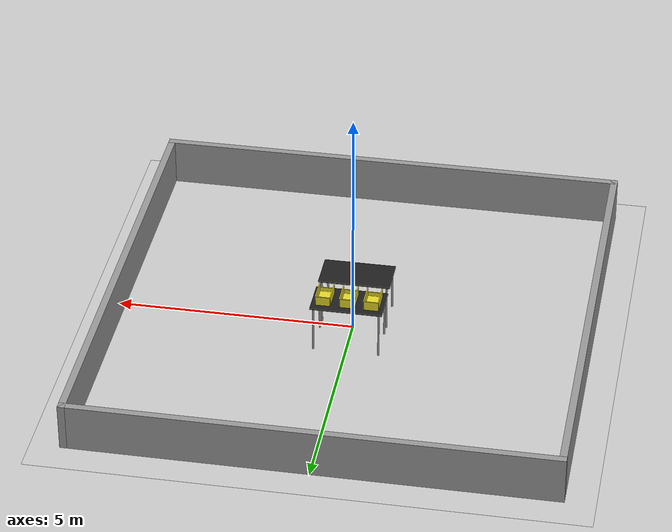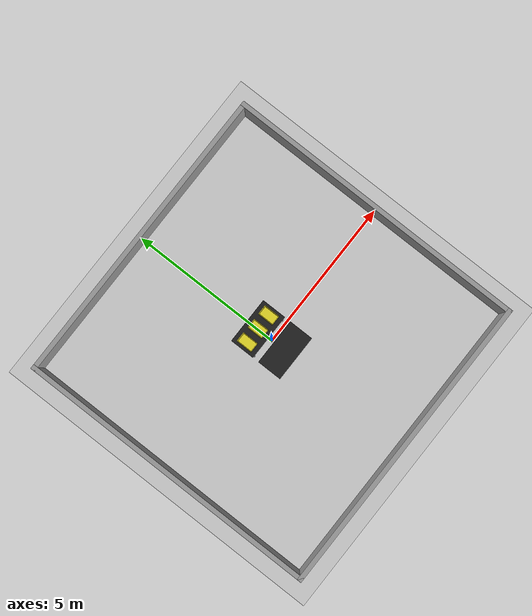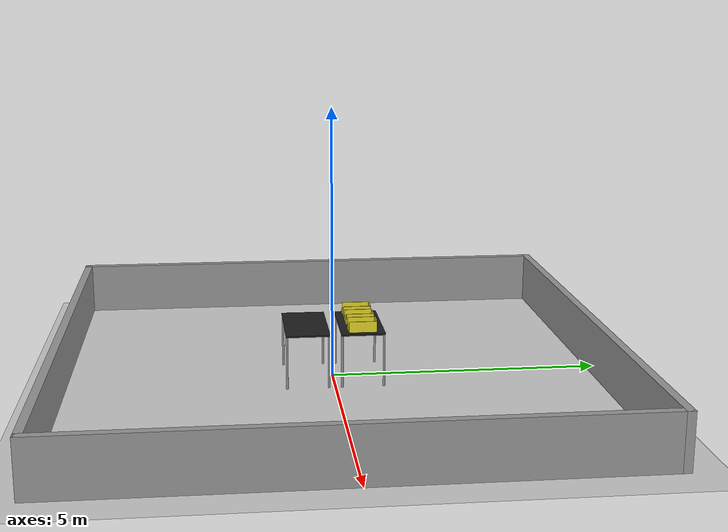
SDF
<sdf version="1.7">
 <world name="default">
  <light name="sun" type="directional">
   <pose>0 0 10 0 -0 0</pose>
   <diffuse>0.8 0.8 0.8 1</diffuse>
   <specular>0.2 0.2 0.2 1</specular>
   <attenuation>
    <range>1000</range>
    <constant>0.9</constant>
    <linear>0.01</linear>
    <quadratic>0.001</quadratic>
   </attenuation>
   <direction>-0.5 0.1 -0.9</direction>
   <spot><inner_angle>0</inner_angle><outer_angle>0</outer_angle><falloff>0</falloff></spot>
  </light>
  <model name="ground_plane">
   <static>1</static>
   <link name="link">
    <collision name="collision">
     <geometry><plane><normal>0 0 1</normal><size>100 100</size></plane></geometry>
     <surface><friction><ode><mu>100</mu><mu2>50</mu2></ode></friction></surface>
    </collision>
    <visual name="visual">
     <cast_shadows>0</cast_shadows>
     <geometry><plane><normal>0 0 1</normal><size>100 100</size></plane></geometry>
     <material>
      <script><uri>file://media/materials/scripts/gazebo.material</uri><name>Gazebo/Grey</name></script>
     </material>
    </visual>
   </link>
  </model>
  <gravity>0 0 -9.8</gravity>
  <magnetic_field>6e-06 2.3e-05 -4.2e-05</magnetic_field>
  <atmosphere type="adiabatic"/>
  <physics type="ode">
   <max_step_size>0.001</max_step_size>
   <real_time_factor>1</real_time_factor>
   <real_time_update_rate>1000</real_time_update_rate>
  </physics>
  <scene><ambient>0.4 0.4 0.4 1</ambient><background>0.7 0.7 0.7 1</background><shadows>1</shadows></scene>
  <audio><device>default</device></audio>
  <spherical_coordinates>
   <surface_model>EARTH_WGS84</surface_model>
   <latitude_deg>0</latitude_deg>
   <longitude_deg>0</longitude_deg>
   <elevation>0</elevation>
   <heading_deg>0</heading_deg>
  </spherical_coordinates>
  <model name="EmptyRoom">
   <pose>0.00816 -0.008034 0 0 -0 0</pose>
   <link name="Wall_1">
    <collision name="Wall_1_Collision">
     <geometry><box><size>10 0.15 1</size></box></geometry>
     <pose>0 0 0.5 0 -0 0</pose>
    </collision>
    <visual name="Wall_1_Visual">
     <pose>0 0 0.5 0 -0 0</pose>
     <geometry><box><size>10 0.15 1</size></box></geometry>
     <material>
      <script><uri>file://media/materials/scripts/gazebo.material</uri><name>Gazebo/Grey</name></script>
      <ambient>1 1 1 1</ambient>
     </material>
     <meta><layer>0</layer></meta>
    </visual>
    <pose>-4.925 0 0 0 -0 -1.5708</pose>
   </link>
   <link name="Wall_2">
    <collision name="Wall_2_Collision">
     <geometry><box><size>10 0.15 1</size></box></geometry>
     <pose>0 0 0.5 0 -0 0</pose>
    </collision>
    <visual name="Wall_2_Visual">
     <pose>0 0 0.5 0 -0 0</pose>
     <geometry><box><size>10 0.15 1</size></box></geometry>
     <material>
      <script><uri>file://media/materials/scripts/gazebo.material</uri><name>Gazebo/Grey</name></script>
      <ambient>1 1 1 1</ambient>
     </material>
     <meta><layer>0</layer></meta>
    </visual>
    <pose>-0 -4.925 0 0 -0 0</pose>
   </link>
   <link name="Wall_3">
    <collision name="Wall_3_Collision">
     <geometry><box><size>10 0.15 1</size></box></geometry>
     <pose>0 0 0.5 0 -0 0</pose>
    </collision>
    <visual name="Wall_3_Visual">
     <pose>0 0 0.5 0 -0 0</pose>
     <geometry><box><size>10 0.15 1</size></box></geometry>
     <material>
      <script><uri>file://media/materials/scripts/gazebo.material</uri><name>Gazebo/Grey</name></script>
      <ambient>1 1 1 1</ambient>
     </material>
     <meta><layer>0</layer></meta>
    </visual>
    <pose>4.925 0 0 0 -0 1.5708</pose>
   </link>
   <link name="Wall_4">
    <collision name="Wall_4_Collision">
     <geometry><box><size>10 0.15 1</size></box></geometry>
     <pose>0 0 0.5 0 -0 0</pose>
    </collision>
    <visual name="Wall_4_Visual">
     <pose>0 0 0.5 0 -0 0</pose>
     <geometry><box><size>10 0.15 1</size></box></geometry>
     <material>
      <script><uri>file://media/materials/scripts/gazebo.material</uri><name>Gazebo/Grey</name></script>
      <ambient>1 1 1 1</ambient>
     </material>
     <meta><layer>0</layer></meta>
    </visual>
    <pose>-0 4.925 0 0 -0 3.14159</pose>
   </link>
   <static>1</static>
  </model>
  <model name="arm_mount">
   <link name="link">
    <inertial>
     <mass>0.618007</mass>
     <inertia>
      <ixx>0.0209316</ixx>
      <ixy>0</ixy>
      <ixz>0</ixz>
      <iyy>0.0209316</iyy>
      <iyz>0</iyz>
      <izz>0.00039788</izz>
     </inertia>
    </inertial>
    <pose>-0.000294 -0.001518 0 0 -0 0</pose>
    <visual name="visual">
     <geometry><cylinder><radius>0.035884</radius><length>1</length></cylinder></geometry>
     <material>
      <script><name>Gazebo/Grey</name><uri>file://media/materials/scripts/gazebo.material</uri></script>
      <shader type="pixel"><normal_map>__default__</normal_map></shader>
      <ambient>0.3 0.3 0.3 1</ambient>
      <diffuse>0.7 0.7 0.7 1</diffuse>
      <specular>0.01 0.01 0.01 1</specular>
      <emissive>0 0 0 1</emissive>
     </material>
    </visual>
    <collision name="collision">
     <geometry><cylinder><radius>0.035884</radius><length>1</length></cylinder></geometry>
     <surface>
      <friction>
       <ode><mu>1</mu><mu2>1</mu2><fdir1>0 0 0</fdir1><slip1>0</slip1><slip2>0</slip2></ode>
       <torsional>
        <coefficient>1</coefficient>
        <patch_radius>0</patch_radius>
        <surface_radius>0</surface_radius>
        <use_patch_radius>1</use_patch_radius>
        <ode><slip>0</slip></ode>
       </torsional>
      </friction>
      <bounce><restitution_coefficient>0</restitution_coefficient><threshold>1e+06</threshold></bounce>
      <contact>
       <collide_without_contact>0</collide_without_contact>
       <collide_without_contact_bitmask>1</collide_without_contact_bitmask>
       <collide_bitmask>1</collide_bitmask>
       <ode>
        <soft_cfm>0</soft_cfm>
        <soft_erp>0.2</soft_erp>
        <kp>1e+13</kp>
        <kd>1</kd>
        <max_vel>0.01</max_vel>
        <min_depth>0</min_depth>
       </ode>
       <bullet>
        <split_impulse>1</split_impulse>
        <split_impulse_penetration_threshold>-0.01</split_impulse_penetration_threshold>
        <soft_cfm>0</soft_cfm>
        <soft_erp>0.2</soft_erp>
        <kp>1e+13</kp>
        <kd>1</kd>
       </bullet>
      </contact>
     </surface>
    </collision>
   </link>
   <static>1</static>
   <pose>0 0 0.5 0 -0 0</pose>
  </model>
  <model name="table">
   <static>1</static>
   <link name="link">
    <collision name="surface">
     <pose>0 0 1 0 -0 0</pose>
     <geometry><box><size>1.5 0.8 0.03</size></box></geometry>
     <surface><friction><ode><mu>0.6</mu><mu2>0.6</mu2></ode></friction></surface>
    </collision>
    <visual name="visual1">
     <pose>0 0 1 0 -0 0</pose>
     <geometry><box><size>1.5 0.8 0.03</size></box></geometry>
     <material>
      <script><uri>file://media/materials/scripts/gazebo.material</uri><name>Gazebo/Black</name></script>
     </material>
    </visual>
    <collision name="front_left_leg">
     <pose>0.68 0.38 0.5 0 -0 0</pose>
     <geometry><cylinder><radius>0.02</radius><length>1</length></cylinder></geometry>
    </collision>
    <visual name="front_left_leg">
     <pose>0.68 0.38 0.5 0 -0 0</pose>
     <geometry><cylinder><radius>0.02</radius><length>1</length></cylinder></geometry>
     <material>
      <script><uri>file://media/materials/scripts/gazebo.material</uri><name>Gazebo/Grey</name></script>
     </material>
    </visual>
    <collision name="front_right_leg">
     <pose>0.68 -0.38 0.5 0 -0 0</pose>
     <geometry><cylinder><radius>0.02</radius><length>1</length></cylinder></geometry>
    </collision>
    <visual name="front_right_leg">
     <pose>0.68 -0.38 0.5 0 -0 0</pose>
     <geometry><cylinder><radius>0.02</radius><length>1</length></cylinder></geometry>
     <material>
      <script><uri>file://media/materials/scripts/gazebo.material</uri><name>Gazebo/Grey</name></script>
     </material>
    </visual>
    <collision name="back_right_leg">
     <pose>-0.68 -0.38 0.5 0 -0 0</pose>
     <geometry><cylinder><radius>0.02</radius><length>1</length></cylinder></geometry>
    </collision>
    <visual name="back_right_leg">
     <pose>-0.68 -0.38 0.5 0 -0 0</pose>
     <geometry><cylinder><radius>0.02</radius><length>1</length></cylinder></geometry>
     <material>
      <script><uri>file://media/materials/scripts/gazebo.material</uri><name>Gazebo/Grey</name></script>
     </material>
    </visual>
    <collision name="back_left_leg">
     <pose>-0.68 0.38 0.5 0 -0 0</pose>
     <geometry><cylinder><radius>0.02</radius><length>1</length></cylinder></geometry>
    </collision>
    <visual name="back_left_leg">
     <pose>-0.68 0.38 0.5 0 -0 0</pose>
     <geometry><cylinder><radius>0.02</radius><length>1</length></cylinder></geometry>
     <material>
      <script><uri>file://media/materials/scripts/gazebo.material</uri><name>Gazebo/Grey</name></script>
     </material>
    </visual>
   </link>
   <pose>0 0.5 0 0 -0 0</pose>
  </model>
  <model name="table_0">
   <static>1</static>
   <link name="link">
    <collision name="surface">
     <pose>0 0 1 0 -0 0</pose>
     <geometry><box><size>1.5 0.8 0.03</size></box></geometry>
     <surface><friction><ode><mu>0.6</mu><mu2>0.6</mu2></ode></friction></surface>
    </collision>
    <visual name="visual1">
     <pose>0 0 1 0 -0 0</pose>
     <geometry><box><size>1.5 0.8 0.03</size></box></geometry>
     <material>
      <script><uri>file://media/materials/scripts/gazebo.material</uri><name>Gazebo/Black</name></script>
     </material>
    </visual>
    <collision name="front_left_leg">
     <pose>0.68 0.38 0.5 0 -0 0</pose>
     <geometry><cylinder><radius>0.02</radius><length>1</length></cylinder></geometry>
    </collision>
    <visual name="front_left_leg">
     <pose>0.68 0.38 0.5 0 -0 0</pose>
     <geometry><cylinder><radius>0.02</radius><length>1</length></cylinder></geometry>
     <material>
      <script><uri>file://media/materials/scripts/gazebo.material</uri><name>Gazebo/Grey</name></script>
     </material>
    </visual>
    <collision name="front_right_leg">
     <pose>0.68 -0.38 0.5 0 -0 0</pose>
     <geometry><cylinder><radius>0.02</radius><length>1</length></cylinder></geometry>
    </collision>
    <visual name="front_right_leg">
     <pose>0.68 -0.38 0.5 0 -0 0</pose>
     <geometry><cylinder><radius>0.02</radius><length>1</length></cylinder></geometry>
     <material>
      <script><uri>file://media/materials/scripts/gazebo.material</uri><name>Gazebo/Grey</name></script>
     </material>
    </visual>
    <collision name="back_right_leg">
     <pose>-0.68 -0.38 0.5 0 -0 0</pose>
     <geometry><cylinder><radius>0.02</radius><length>1</length></cylinder></geometry>
    </collision>
    <visual name="back_right_leg">
     <pose>-0.68 -0.38 0.5 0 -0 0</pose>
     <geometry><cylinder><radius>0.02</radius><length>1</length></cylinder></geometry>
     <material>
      <script><uri>file://media/materials/scripts/gazebo.material</uri><name>Gazebo/Grey</name></script>
     </material>
    </visual>
    <collision name="back_left_leg">
     <pose>-0.68 0.38 0.5 0 -0 0</pose>
     <geometry><cylinder><radius>0.02</radius><length>1</length></cylinder></geometry>
    </collision>
    <visual name="back_left_leg">
     <pose>-0.68 0.38 0.5 0 -0 0</pose>
     <geometry><cylinder><radius>0.02</radius><length>1</length></cylinder></geometry>
     <material>
      <script><uri>file://media/materials/scripts/gazebo.material</uri><name>Gazebo/Grey</name></script>
     </material>
    </visual>
   </link>
   <pose>0 -0.5 0 0 -0 0</pose>
  </model>
  <model name="kit_bin">
   <link name="link_0">
    <inertial>
     <mass>1</mass>
     <inertia>
      <ixx>0.166667</ixx>
      <ixy>0</ixy>
      <ixz>0</ixz>
      <iyy>0.166667</iyy>
      <iyz>0</iyz>
      <izz>0.166667</izz>
     </inertia>
    </inertial>
    <visual name="ModelPreview_0::link_0::visual_3">
     <pose>0 0.25 0.1 0 -0 0</pose>
     <geometry><box><size>0.3 0.02 0.2</size></box></geometry>
     <material>
      <lighting>1</lighting>
      <script><uri>file://media/materials/scripts/gazebo.material</uri><name>Gazebo/Yellow</name></script>
      <shader type="pixel"><normal_map>__default__</normal_map></shader>
      <ambient>1 1 0 1</ambient>
      <diffuse>0.7 0.7 0.7 1</diffuse>
      <specular>0.01 0.01 0.01 1</specular>
      <emissive>0 0 0 1</emissive>
     </material>
    </visual>
    <visual name="ModelPreview_0::link_0::visual_2">
     <pose>-0.15 0 0.1 0 -0 0</pose>
     <geometry><box><size>0.02 0.5 0.2</size></box></geometry>
     <material>
      <lighting>1</lighting>
      <script><uri>file://media/materials/scripts/gazebo.material</uri><name>Gazebo/Yellow</name></script>
      <shader type="pixel"><normal_map>__default__</normal_map></shader>
      <ambient>1 1 0 1</ambient>
      <diffuse>0.7 0.7 0.7 1</diffuse>
      <specular>0.01 0.01 0.01 1</specular>
      <emissive>0 0 0 1</emissive>
     </material>
    </visual>
    <visual name="ModelPreview_0::link_0::visual_4">
     <pose>0 -0.25 0.05 0 -0 0</pose>
     <geometry><box><size>0.3 0.02 0.1</size></box></geometry>
     <material>
      <lighting>1</lighting>
      <script><uri>file://media/materials/scripts/gazebo.material</uri><name>Gazebo/Yellow</name></script>
      <shader type="pixel"><normal_map>__default__</normal_map></shader>
      <ambient>1 1 0 1</ambient>
      <diffuse>0.7 0.7 0.7 1</diffuse>
      <specular>0.01 0.01 0.01 1</specular>
      <emissive>0 0 0 1</emissive>
     </material>
    </visual>
    <visual name="visual">
     <geometry><box><size>0.3 0.5 0.02</size></box></geometry>
     <material>
      <lighting>1</lighting>
      <script><uri>file://media/materials/scripts/gazebo.material</uri><name>Gazebo/Yellow</name></script>
      <shader type="pixel"><normal_map>__default__</normal_map></shader>
      <ambient>1 1 0 1</ambient>
      <diffuse>0.7 0.7 0.7 1</diffuse>
      <specular>0.01 0.01 0.01 1</specular>
      <emissive>0 0 0 1</emissive>
     </material>
    </visual>
    <visual name="ModelPreview_0::link_0::visual_1">
     <pose>0.15 0 0.1 0 -0 0</pose>
     <geometry><box><size>0.02 0.5 0.2</size></box></geometry>
     <material>
      <lighting>1</lighting>
      <script><uri>file://media/materials/scripts/gazebo.material</uri><name>Gazebo/Yellow</name></script>
      <shader type="pixel"><normal_map>__default__</normal_map></shader>
      <ambient>1 1 0 1</ambient>
      <diffuse>0.7 0.7 0.7 1</diffuse>
      <specular>0.01 0.01 0.01 1</specular>
      <emissive>0 0 0 1</emissive>
     </material>
    </visual>
    <collision name="collision_5">
     <pose>0 -0.25 0.05 0 -0 0</pose>
     <geometry><box><size>0.3 0.02 0.1</size></box></geometry>
     <surface>
      <friction>
       <ode><mu>1</mu><mu2>1</mu2><fdir1>0 0 0</fdir1><slip1>0</slip1><slip2>0</slip2></ode>
       <torsional>
        <coefficient>1</coefficient>
        <patch_radius>0</patch_radius>
        <surface_radius>0</surface_radius>
        <use_patch_radius>1</use_patch_radius>
        <ode><slip>0</slip></ode>
       </torsional>
      </friction>
      <bounce><restitution_coefficient>0</restitution_coefficient><threshold>1e+06</threshold></bounce>
      <contact>
       <collide_without_contact>0</collide_without_contact>
       <collide_without_contact_bitmask>1</collide_without_contact_bitmask>
       <collide_bitmask>1</collide_bitmask>
       <ode>
        <soft_cfm>0</soft_cfm>
        <soft_erp>0.2</soft_erp>
        <kp>1e+13</kp>
        <kd>1</kd>
        <max_vel>0.01</max_vel>
        <min_depth>0</min_depth>
       </ode>
       <bullet>
        <split_impulse>1</split_impulse>
        <split_impulse_penetration_threshold>-0.01</split_impulse_penetration_threshold>
        <soft_cfm>0</soft_cfm>
        <soft_erp>0.2</soft_erp>
        <kp>1e+13</kp>
        <kd>1</kd>
       </bullet>
      </contact>
     </surface>
    </collision>
    <collision name="collision_2">
     <pose>0.15 0 0.1 0 -0 0</pose>
     <geometry><box><size>0.02 0.5 0.2</size></box></geometry>
     <surface>
      <friction>
       <ode><mu>1</mu><mu2>1</mu2><fdir1>0 0 0</fdir1><slip1>0</slip1><slip2>0</slip2></ode>
       <torsional>
        <coefficient>1</coefficient>
        <patch_radius>0</patch_radius>
        <surface_radius>0</surface_radius>
        <use_patch_radius>1</use_patch_radius>
        <ode><slip>0</slip></ode>
       </torsional>
      </friction>
      <bounce><restitution_coefficient>0</restitution_coefficient><threshold>1e+06</threshold></bounce>
      <contact>
       <collide_without_contact>0</collide_without_contact>
       <collide_without_contact_bitmask>1</collide_without_contact_bitmask>
       <collide_bitmask>1</collide_bitmask>
       <ode>
        <soft_cfm>0</soft_cfm>
        <soft_erp>0.2</soft_erp>
        <kp>1e+13</kp>
        <kd>1</kd>
        <max_vel>0.01</max_vel>
        <min_depth>0</min_depth>
       </ode>
       <bullet>
        <split_impulse>1</split_impulse>
        <split_impulse_penetration_threshold>-0.01</split_impulse_penetration_threshold>
        <soft_cfm>0</soft_cfm>
        <soft_erp>0.2</soft_erp>
        <kp>1e+13</kp>
        <kd>1</kd>
       </bullet>
      </contact>
     </surface>
    </collision>
    <collision name="collision_4">
     <pose>0 0.25 0.1 0 -0 0</pose>
     <geometry><box><size>0.3 0.02 0.2</size></box></geometry>
     <surface>
      <friction>
       <ode><mu>1</mu><mu2>1</mu2><fdir1>0 0 0</fdir1><slip1>0</slip1><slip2>0</slip2></ode>
       <torsional>
        <coefficient>1</coefficient>
        <patch_radius>0</patch_radius>
        <surface_radius>0</surface_radius>
        <use_patch_radius>1</use_patch_radius>
        <ode><slip>0</slip></ode>
       </torsional>
      </friction>
      <bounce><restitution_coefficient>0</restitution_coefficient><threshold>1e+06</threshold></bounce>
      <contact>
       <collide_without_contact>0</collide_without_contact>
       <collide_without_contact_bitmask>1</collide_without_contact_bitmask>
       <collide_bitmask>1</collide_bitmask>
       <ode>
        <soft_cfm>0</soft_cfm>
        <soft_erp>0.2</soft_erp>
        <kp>1e+13</kp>
        <kd>1</kd>
        <max_vel>0.01</max_vel>
        <min_depth>0</min_depth>
       </ode>
       <bullet>
        <split_impulse>1</split_impulse>
        <split_impulse_penetration_threshold>-0.01</split_impulse_penetration_threshold>
        <soft_cfm>0</soft_cfm>
        <soft_erp>0.2</soft_erp>
        <kp>1e+13</kp>
        <kd>1</kd>
       </bullet>
      </contact>
     </surface>
    </collision>
    <collision name="collision_3">
     <pose>-0.15 0 0.1 0 -0 0</pose>
     <geometry><box><size>0.02 0.5 0.2</size></box></geometry>
     <surface>
      <friction>
       <ode><mu>1</mu><mu2>1</mu2><fdir1>0 0 0</fdir1><slip1>0</slip1><slip2>0</slip2></ode>
       <torsional>
        <coefficient>1</coefficient>
        <patch_radius>0</patch_radius>
        <surface_radius>0</surface_radius>
        <use_patch_radius>1</use_patch_radius>
        <ode><slip>0</slip></ode>
       </torsional>
      </friction>
      <bounce><restitution_coefficient>0</restitution_coefficient><threshold>1e+06</threshold></bounce>
      <contact>
       <collide_without_contact>0</collide_without_contact>
       <collide_without_contact_bitmask>1</collide_without_contact_bitmask>
       <collide_bitmask>1</collide_bitmask>
       <ode>
        <soft_cfm>0</soft_cfm>
        <soft_erp>0.2</soft_erp>
        <kp>1e+13</kp>
        <kd>1</kd>
        <max_vel>0.01</max_vel>
        <min_depth>0</min_depth>
       </ode>
       <bullet>
        <split_impulse>1</split_impulse>
        <split_impulse_penetration_threshold>-0.01</split_impulse_penetration_threshold>
        <soft_cfm>0</soft_cfm>
        <soft_erp>0.2</soft_erp>
        <kp>1e+13</kp>
        <kd>1</kd>
       </bullet>
      </contact>
     </surface>
    </collision>
    <collision name="collision_1">
     <geometry><box><size>0.3 0.5 0.02</size></box></geometry>
     <surface>
      <friction>
       <ode><mu>1</mu><mu2>1</mu2><fdir1>0 0 0</fdir1><slip1>0</slip1><slip2>0</slip2></ode>
       <torsional>
        <coefficient>1</coefficient>
        <patch_radius>0</patch_radius>
        <surface_radius>0</surface_radius>
        <use_patch_radius>1</use_patch_radius>
        <ode><slip>0</slip></ode>
       </torsional>
      </friction>
      <bounce><restitution_coefficient>0</restitution_coefficient><threshold>1e+06</threshold></bounce>
      <contact>
       <collide_without_contact>0</collide_without_contact>
       <collide_without_contact_bitmask>1</collide_without_contact_bitmask>
       <collide_bitmask>1</collide_bitmask>
       <ode>
        <soft_cfm>0</soft_cfm>
        <soft_erp>0.2</soft_erp>
        <kp>1e+13</kp>
        <kd>1</kd>
        <max_vel>0.01</max_vel>
        <min_depth>0</min_depth>
       </ode>
       <bullet>
        <split_impulse>1</split_impulse>
        <split_impulse_penetration_threshold>-0.01</split_impulse_penetration_threshold>
        <soft_cfm>0</soft_cfm>
        <soft_erp>0.2</soft_erp>
        <kp>1e+13</kp>
        <kd>1</kd>
       </bullet>
      </contact>
     </surface>
    </collision>
   </link>
   <static>0</static>
   <pose>-0.499934 0.501287 1.02 0 -0 0</pose>
  </model>
  <model name="kit_bin_clone">
   <link name="link_0">
    <inertial>
     <mass>1</mass>
     <inertia>
      <ixx>0.166667</ixx>
      <ixy>0</ixy>
      <ixz>0</ixz>
      <iyy>0.166667</iyy>
      <iyz>0</iyz>
      <izz>0.166667</izz>
     </inertia>
    </inertial>
    <visual name="ModelPreview_0::link_0::visual_3">
     <pose>0 0.25 0.1 0 -0 0</pose>
     <geometry><box><size>0.3 0.02 0.2</size></box></geometry>
     <material>
      <lighting>1</lighting>
      <script><uri>file://media/materials/scripts/gazebo.material</uri><name>Gazebo/Yellow</name></script>
      <shader type="pixel"><normal_map>__default__</normal_map></shader>
      <ambient>1 1 0 1</ambient>
      <diffuse>0.7 0.7 0.7 1</diffuse>
      <specular>0.01 0.01 0.01 1</specular>
      <emissive>0 0 0 1</emissive>
     </material>
    </visual>
    <visual name="ModelPreview_0::link_0::visual_2">
     <pose>-0.15 0 0.1 0 -0 0</pose>
     <geometry><box><size>0.02 0.5 0.2</size></box></geometry>
     <material>
      <lighting>1</lighting>
      <script><uri>file://media/materials/scripts/gazebo.material</uri><name>Gazebo/Yellow</name></script>
      <shader type="pixel"><normal_map>__default__</normal_map></shader>
      <ambient>1 1 0 1</ambient>
      <diffuse>0.7 0.7 0.7 1</diffuse>
      <specular>0.01 0.01 0.01 1</specular>
      <emissive>0 0 0 1</emissive>
     </material>
    </visual>
    <visual name="ModelPreview_0::link_0::visual_4">
     <pose>0 -0.25 0.05 0 -0 0</pose>
     <geometry><box><size>0.3 0.02 0.1</size></box></geometry>
     <material>
      <lighting>1</lighting>
      <script><uri>file://media/materials/scripts/gazebo.material</uri><name>Gazebo/Yellow</name></script>
      <shader type="pixel"><normal_map>__default__</normal_map></shader>
      <ambient>1 1 0 1</ambient>
      <diffuse>0.7 0.7 0.7 1</diffuse>
      <specular>0.01 0.01 0.01 1</specular>
      <emissive>0 0 0 1</emissive>
     </material>
    </visual>
    <visual name="visual">
     <geometry><box><size>0.3 0.5 0.02</size></box></geometry>
     <material>
      <lighting>1</lighting>
      <script><uri>file://media/materials/scripts/gazebo.material</uri><name>Gazebo/Yellow</name></script>
      <shader type="pixel"><normal_map>__default__</normal_map></shader>
      <ambient>1 1 0 1</ambient>
      <diffuse>0.7 0.7 0.7 1</diffuse>
      <specular>0.01 0.01 0.01 1</specular>
      <emissive>0 0 0 1</emissive>
     </material>
    </visual>
    <visual name="ModelPreview_0::link_0::visual_1">
     <pose>0.15 0 0.1 0 -0 0</pose>
     <geometry><box><size>0.02 0.5 0.2</size></box></geometry>
     <material>
      <lighting>1</lighting>
      <script><uri>file://media/materials/scripts/gazebo.material</uri><name>Gazebo/Yellow</name></script>
      <shader type="pixel"><normal_map>__default__</normal_map></shader>
      <ambient>1 1 0 1</ambient>
      <diffuse>0.7 0.7 0.7 1</diffuse>
      <specular>0.01 0.01 0.01 1</specular>
      <emissive>0 0 0 1</emissive>
     </material>
    </visual>
    <collision name="collision_5">
     <pose>0 -0.25 0.05 0 -0 0</pose>
     <geometry><box><size>0.3 0.02 0.1</size></box></geometry>
     <surface>
      <friction>
       <ode><mu>1</mu><mu2>1</mu2><fdir1>0 0 0</fdir1><slip1>0</slip1><slip2>0</slip2></ode>
       <torsional>
        <coefficient>1</coefficient>
        <patch_radius>0</patch_radius>
        <surface_radius>0</surface_radius>
        <use_patch_radius>1</use_patch_radius>
        <ode><slip>0</slip></ode>
       </torsional>
      </friction>
      <bounce><restitution_coefficient>0</restitution_coefficient><threshold>1e+06</threshold></bounce>
      <contact>
       <collide_without_contact>0</collide_without_contact>
       <collide_without_contact_bitmask>1</collide_without_contact_bitmask>
       <collide_bitmask>1</collide_bitmask>
       <ode>
        <soft_cfm>0</soft_cfm>
        <soft_erp>0.2</soft_erp>
        <kp>1e+13</kp>
        <kd>1</kd>
        <max_vel>0.01</max_vel>
        <min_depth>0</min_depth>
       </ode>
       <bullet>
        <split_impulse>1</split_impulse>
        <split_impulse_penetration_threshold>-0.01</split_impulse_penetration_threshold>
        <soft_cfm>0</soft_cfm>
        <soft_erp>0.2</soft_erp>
        <kp>1e+13</kp>
        <kd>1</kd>
       </bullet>
      </contact>
     </surface>
    </collision>
    <collision name="collision_2">
     <pose>0.15 0 0.1 0 -0 0</pose>
     <geometry><box><size>0.02 0.5 0.2</size></box></geometry>
     <surface>
      <friction>
       <ode><mu>1</mu><mu2>1</mu2><fdir1>0 0 0</fdir1><slip1>0</slip1><slip2>0</slip2></ode>
       <torsional>
        <coefficient>1</coefficient>
        <patch_radius>0</patch_radius>
        <surface_radius>0</surface_radius>
        <use_patch_radius>1</use_patch_radius>
        <ode><slip>0</slip></ode>
       </torsional>
      </friction>
      <bounce><restitution_coefficient>0</restitution_coefficient><threshold>1e+06</threshold></bounce>
      <contact>
       <collide_without_contact>0</collide_without_contact>
       <collide_without_contact_bitmask>1</collide_without_contact_bitmask>
       <collide_bitmask>1</collide_bitmask>
       <ode>
        <soft_cfm>0</soft_cfm>
        <soft_erp>0.2</soft_erp>
        <kp>1e+13</kp>
        <kd>1</kd>
        <max_vel>0.01</max_vel>
        <min_depth>0</min_depth>
       </ode>
       <bullet>
        <split_impulse>1</split_impulse>
        <split_impulse_penetration_threshold>-0.01</split_impulse_penetration_threshold>
        <soft_cfm>0</soft_cfm>
        <soft_erp>0.2</soft_erp>
        <kp>1e+13</kp>
        <kd>1</kd>
       </bullet>
      </contact>
     </surface>
    </collision>
    <collision name="collision_4">
     <pose>0 0.25 0.1 0 -0 0</pose>
     <geometry><box><size>0.3 0.02 0.2</size></box></geometry>
     <surface>
      <friction>
       <ode><mu>1</mu><mu2>1</mu2><fdir1>0 0 0</fdir1><slip1>0</slip1><slip2>0</slip2></ode>
       <torsional>
        <coefficient>1</coefficient>
        <patch_radius>0</patch_radius>
        <surface_radius>0</surface_radius>
        <use_patch_radius>1</use_patch_radius>
        <ode><slip>0</slip></ode>
       </torsional>
      </friction>
      <bounce><restitution_coefficient>0</restitution_coefficient><threshold>1e+06</threshold></bounce>
      <contact>
       <collide_without_contact>0</collide_without_contact>
       <collide_without_contact_bitmask>1</collide_without_contact_bitmask>
       <collide_bitmask>1</collide_bitmask>
       <ode>
        <soft_cfm>0</soft_cfm>
        <soft_erp>0.2</soft_erp>
        <kp>1e+13</kp>
        <kd>1</kd>
        <max_vel>0.01</max_vel>
        <min_depth>0</min_depth>
       </ode>
       <bullet>
        <split_impulse>1</split_impulse>
        <split_impulse_penetration_threshold>-0.01</split_impulse_penetration_threshold>
        <soft_cfm>0</soft_cfm>
        <soft_erp>0.2</soft_erp>
        <kp>1e+13</kp>
        <kd>1</kd>
       </bullet>
      </contact>
     </surface>
    </collision>
    <collision name="collision_3">
     <pose>-0.15 0 0.1 0 -0 0</pose>
     <geometry><box><size>0.02 0.5 0.2</size></box></geometry>
     <surface>
      <friction>
       <ode><mu>1</mu><mu2>1</mu2><fdir1>0 0 0</fdir1><slip1>0</slip1><slip2>0</slip2></ode>
       <torsional>
        <coefficient>1</coefficient>
        <patch_radius>0</patch_radius>
        <surface_radius>0</surface_radius>
        <use_patch_radius>1</use_patch_radius>
        <ode><slip>0</slip></ode>
       </torsional>
      </friction>
      <bounce><restitution_coefficient>0</restitution_coefficient><threshold>1e+06</threshold></bounce>
      <contact>
       <collide_without_contact>0</collide_without_contact>
       <collide_without_contact_bitmask>1</collide_without_contact_bitmask>
       <collide_bitmask>1</collide_bitmask>
       <ode>
        <soft_cfm>0</soft_cfm>
        <soft_erp>0.2</soft_erp>
        <kp>1e+13</kp>
        <kd>1</kd>
        <max_vel>0.01</max_vel>
        <min_depth>0</min_depth>
       </ode>
       <bullet>
        <split_impulse>1</split_impulse>
        <split_impulse_penetration_threshold>-0.01</split_impulse_penetration_threshold>
        <soft_cfm>0</soft_cfm>
        <soft_erp>0.2</soft_erp>
        <kp>1e+13</kp>
        <kd>1</kd>
       </bullet>
      </contact>
     </surface>
    </collision>
    <collision name="collision_1">
     <geometry><box><size>0.3 0.5 0.02</size></box></geometry>
     <surface>
      <friction>
       <ode><mu>1</mu><mu2>1</mu2><fdir1>0 0 0</fdir1><slip1>0</slip1><slip2>0</slip2></ode>
       <torsional>
        <coefficient>1</coefficient>
        <patch_radius>0</patch_radius>
        <surface_radius>0</surface_radius>
        <use_patch_radius>1</use_patch_radius>
        <ode><slip>0</slip></ode>
       </torsional>
      </friction>
      <bounce><restitution_coefficient>0</restitution_coefficient><threshold>1e+06</threshold></bounce>
      <contact>
       <collide_without_contact>0</collide_without_contact>
       <collide_without_contact_bitmask>1</collide_without_contact_bitmask>
       <collide_bitmask>1</collide_bitmask>
       <ode>
        <soft_cfm>0</soft_cfm>
        <soft_erp>0.2</soft_erp>
        <kp>1e+13</kp>
        <kd>1</kd>
        <max_vel>0.01</max_vel>
        <min_depth>0</min_depth>
       </ode>
       <bullet>
        <split_impulse>1</split_impulse>
        <split_impulse_penetration_threshold>-0.01</split_impulse_penetration_threshold>
        <soft_cfm>0</soft_cfm>
        <soft_erp>0.2</soft_erp>
        <kp>1e+13</kp>
        <kd>1</kd>
       </bullet>
      </contact>
     </surface>
    </collision>
   </link>
   <static>0</static>
   <pose>0 0.5 1.02 0 -0 0</pose>
  </model>
  <model name="kit_bin_clone_0">
   <link name="link_0">
    <inertial>
     <mass>1</mass>
     <inertia>
      <ixx>0.166667</ixx>
      <ixy>0</ixy>
      <ixz>0</ixz>
      <iyy>0.166667</iyy>
      <iyz>0</iyz>
      <izz>0.166667</izz>
     </inertia>
    </inertial>
    <visual name="ModelPreview_0::link_0::visual_3">
     <pose>0 0.25 0.1 0 -0 0</pose>
     <geometry><box><size>0.3 0.02 0.2</size></box></geometry>
     <material>
      <lighting>1</lighting>
      <script><uri>file://media/materials/scripts/gazebo.material</uri><name>Gazebo/Yellow</name></script>
      <shader type="pixel"><normal_map>__default__</normal_map></shader>
      <ambient>1 1 0 1</ambient>
      <diffuse>0.7 0.7 0.7 1</diffuse>
      <specular>0.01 0.01 0.01 1</specular>
      <emissive>0 0 0 1</emissive>
     </material>
    </visual>
    <visual name="ModelPreview_0::link_0::visual_2">
     <pose>-0.15 0 0.1 0 -0 0</pose>
     <geometry><box><size>0.02 0.5 0.2</size></box></geometry>
     <material>
      <lighting>1</lighting>
      <script><uri>file://media/materials/scripts/gazebo.material</uri><name>Gazebo/Yellow</name></script>
      <shader type="pixel"><normal_map>__default__</normal_map></shader>
      <ambient>1 1 0 1</ambient>
      <diffuse>0.7 0.7 0.7 1</diffuse>
      <specular>0.01 0.01 0.01 1</specular>
      <emissive>0 0 0 1</emissive>
     </material>
    </visual>
    <visual name="ModelPreview_0::link_0::visual_4">
     <pose>0 -0.25 0.05 0 -0 0</pose>
     <geometry><box><size>0.3 0.02 0.1</size></box></geometry>
     <material>
      <lighting>1</lighting>
      <script><uri>file://media/materials/scripts/gazebo.material</uri><name>Gazebo/Yellow</name></script>
      <shader type="pixel"><normal_map>__default__</normal_map></shader>
      <ambient>1 1 0 1</ambient>
      <diffuse>0.7 0.7 0.7 1</diffuse>
      <specular>0.01 0.01 0.01 1</specular>
      <emissive>0 0 0 1</emissive>
     </material>
    </visual>
    <visual name="visual">
     <geometry><box><size>0.3 0.5 0.02</size></box></geometry>
     <material>
      <lighting>1</lighting>
      <script><uri>file://media/materials/scripts/gazebo.material</uri><name>Gazebo/Yellow</name></script>
      <shader type="pixel"><normal_map>__default__</normal_map></shader>
      <ambient>1 1 0 1</ambient>
      <diffuse>0.7 0.7 0.7 1</diffuse>
      <specular>0.01 0.01 0.01 1</specular>
      <emissive>0 0 0 1</emissive>
     </material>
    </visual>
    <visual name="ModelPreview_0::link_0::visual_1">
     <pose>0.15 0 0.1 0 -0 0</pose>
     <geometry><box><size>0.02 0.5 0.2</size></box></geometry>
     <material>
      <lighting>1</lighting>
      <script><uri>file://media/materials/scripts/gazebo.material</uri><name>Gazebo/Yellow</name></script>
      <shader type="pixel"><normal_map>__default__</normal_map></shader>
      <ambient>1 1 0 1</ambient>
      <diffuse>0.7 0.7 0.7 1</diffuse>
      <specular>0.01 0.01 0.01 1</specular>
      <emissive>0 0 0 1</emissive>
     </material>
    </visual>
    <collision name="collision_5">
     <pose>0 -0.25 0.05 0 -0 0</pose>
     <geometry><box><size>0.3 0.02 0.1</size></box></geometry>
     <surface>
      <friction>
       <ode><mu>1</mu><mu2>1</mu2><fdir1>0 0 0</fdir1><slip1>0</slip1><slip2>0</slip2></ode>
       <torsional>
        <coefficient>1</coefficient>
        <patch_radius>0</patch_radius>
        <surface_radius>0</surface_radius>
        <use_patch_radius>1</use_patch_radius>
        <ode><slip>0</slip></ode>
       </torsional>
      </friction>
      <bounce><restitution_coefficient>0</restitution_coefficient><threshold>1e+06</threshold></bounce>
      <contact>
       <collide_without_contact>0</collide_without_contact>
       <collide_without_contact_bitmask>1</collide_without_contact_bitmask>
       <collide_bitmask>1</collide_bitmask>
       <ode>
        <soft_cfm>0</soft_cfm>
        <soft_erp>0.2</soft_erp>
        <kp>1e+13</kp>
        <kd>1</kd>
        <max_vel>0.01</max_vel>
        <min_depth>0</min_depth>
       </ode>
       <bullet>
        <split_impulse>1</split_impulse>
        <split_impulse_penetration_threshold>-0.01</split_impulse_penetration_threshold>
        <soft_cfm>0</soft_cfm>
        <soft_erp>0.2</soft_erp>
        <kp>1e+13</kp>
        <kd>1</kd>
       </bullet>
      </contact>
     </surface>
    </collision>
    <collision name="collision_2">
     <pose>0.15 0 0.1 0 -0 0</pose>
     <geometry><box><size>0.02 0.5 0.2</size></box></geometry>
     <surface>
      <friction>
       <ode><mu>1</mu><mu2>1</mu2><fdir1>0 0 0</fdir1><slip1>0</slip1><slip2>0</slip2></ode>
       <torsional>
        <coefficient>1</coefficient>
        <patch_radius>0</patch_radius>
        <surface_radius>0</surface_radius>
        <use_patch_radius>1</use_patch_radius>
        <ode><slip>0</slip></ode>
       </torsional>
      </friction>
      <bounce><restitution_coefficient>0</restitution_coefficient><threshold>1e+06</threshold></bounce>
      <contact>
       <collide_without_contact>0</collide_without_contact>
       <collide_without_contact_bitmask>1</collide_without_contact_bitmask>
       <collide_bitmask>1</collide_bitmask>
       <ode>
        <soft_cfm>0</soft_cfm>
        <soft_erp>0.2</soft_erp>
        <kp>1e+13</kp>
        <kd>1</kd>
        <max_vel>0.01</max_vel>
        <min_depth>0</min_depth>
       </ode>
       <bullet>
        <split_impulse>1</split_impulse>
        <split_impulse_penetration_threshold>-0.01</split_impulse_penetration_threshold>
        <soft_cfm>0</soft_cfm>
        <soft_erp>0.2</soft_erp>
        <kp>1e+13</kp>
        <kd>1</kd>
       </bullet>
      </contact>
     </surface>
    </collision>
    <collision name="collision_4">
     <pose>0 0.25 0.1 0 -0 0</pose>
     <geometry><box><size>0.3 0.02 0.2</size></box></geometry>
     <surface>
      <friction>
       <ode><mu>1</mu><mu2>1</mu2><fdir1>0 0 0</fdir1><slip1>0</slip1><slip2>0</slip2></ode>
       <torsional>
        <coefficient>1</coefficient>
        <patch_radius>0</patch_radius>
        <surface_radius>0</surface_radius>
        <use_patch_radius>1</use_patch_radius>
        <ode><slip>0</slip></ode>
       </torsional>
      </friction>
      <bounce><restitution_coefficient>0</restitution_coefficient><threshold>1e+06</threshold></bounce>
      <contact>
       <collide_without_contact>0</collide_without_contact>
       <collide_without_contact_bitmask>1</collide_without_contact_bitmask>
       <collide_bitmask>1</collide_bitmask>
       <ode>
        <soft_cfm>0</soft_cfm>
        <soft_erp>0.2</soft_erp>
        <kp>1e+13</kp>
        <kd>1</kd>
        <max_vel>0.01</max_vel>
        <min_depth>0</min_depth>
       </ode>
       <bullet>
        <split_impulse>1</split_impulse>
        <split_impulse_penetration_threshold>-0.01</split_impulse_penetration_threshold>
        <soft_cfm>0</soft_cfm>
        <soft_erp>0.2</soft_erp>
        <kp>1e+13</kp>
        <kd>1</kd>
       </bullet>
      </contact>
     </surface>
    </collision>
    <collision name="collision_3">
     <pose>-0.15 0 0.1 0 -0 0</pose>
     <geometry><box><size>0.02 0.5 0.2</size></box></geometry>
     <surface>
      <friction>
       <ode><mu>1</mu><mu2>1</mu2><fdir1>0 0 0</fdir1><slip1>0</slip1><slip2>0</slip2></ode>
       <torsional>
        <coefficient>1</coefficient>
        <patch_radius>0</patch_radius>
        <surface_radius>0</surface_radius>
        <use_patch_radius>1</use_patch_radius>
        <ode><slip>0</slip></ode>
       </torsional>
      </friction>
      <bounce><restitution_coefficient>0</restitution_coefficient><threshold>1e+06</threshold></bounce>
      <contact>
       <collide_without_contact>0</collide_without_contact>
       <collide_without_contact_bitmask>1</collide_without_contact_bitmask>
       <collide_bitmask>1</collide_bitmask>
       <ode>
        <soft_cfm>0</soft_cfm>
        <soft_erp>0.2</soft_erp>
        <kp>1e+13</kp>
        <kd>1</kd>
        <max_vel>0.01</max_vel>
        <min_depth>0</min_depth>
       </ode>
       <bullet>
        <split_impulse>1</split_impulse>
        <split_impulse_penetration_threshold>-0.01</split_impulse_penetration_threshold>
        <soft_cfm>0</soft_cfm>
        <soft_erp>0.2</soft_erp>
        <kp>1e+13</kp>
        <kd>1</kd>
       </bullet>
      </contact>
     </surface>
    </collision>
    <collision name="collision_1">
     <geometry><box><size>0.3 0.5 0.02</size></box></geometry>
     <surface>
      <friction>
       <ode><mu>1</mu><mu2>1</mu2><fdir1>0 0 0</fdir1><slip1>0</slip1><slip2>0</slip2></ode>
       <torsional>
        <coefficient>1</coefficient>
        <patch_radius>0</patch_radius>
        <surface_radius>0</surface_radius>
        <use_patch_radius>1</use_patch_radius>
        <ode><slip>0</slip></ode>
       </torsional>
      </friction>
      <bounce><restitution_coefficient>0</restitution_coefficient><threshold>1e+06</threshold></bounce>
      <contact>
       <collide_without_contact>0</collide_without_contact>
       <collide_without_contact_bitmask>1</collide_without_contact_bitmask>
       <collide_bitmask>1</collide_bitmask>
       <ode>
        <soft_cfm>0</soft_cfm>
        <soft_erp>0.2</soft_erp>
        <kp>1e+13</kp>
        <kd>1</kd>
        <max_vel>0.01</max_vel>
        <min_depth>0</min_depth>
       </ode>
       <bullet>
        <split_impulse>1</split_impulse>
        <split_impulse_penetration_threshold>-0.01</split_impulse_penetration_threshold>
        <soft_cfm>0</soft_cfm>
        <soft_erp>0.2</soft_erp>
        <kp>1e+13</kp>
        <kd>1</kd>
       </bullet>
      </contact>
     </surface>
    </collision>
   </link>
   <static>0</static>
   <pose>0.5 0.5 1.02 0 -0 0</pose>
  </model>
 </world>
</sdf>
